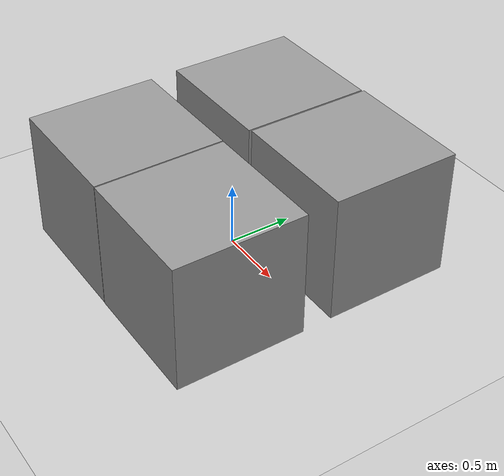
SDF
<sdf version="1.6">
 <world name="default">
  <light name="sun" type="directional">
   <pose>0 0 10 0 -0 0</pose>
   <diffuse>0.8 0.8 0.8 1</diffuse>
   <specular>0.1 0.1 0.1 1</specular>
   <attenuation>
    <range>1000</range>
    <constant>0.9</constant>
    <linear>0.01</linear>
    <quadratic>0.001</quadratic>
   </attenuation>
   <direction>-0.5 0.5 -1</direction>
  </light>
  <model name="ground_plane">
   <static>1</static>
   <link name="link">
    <collision name="collision">
     <geometry><plane><normal>0 0 1</normal><size>100 100</size></plane></geometry>
     <surface><friction><ode><mu>100</mu><mu2>50</mu2></ode></friction></surface>
    </collision>
    <visual name="visual">
     <cast_shadows>0</cast_shadows>
     <geometry><plane><normal>0 0 1</normal><size>100 100</size></plane></geometry>
     <material>
      <script><uri>file://media/materials/scripts/gazebo.material</uri><name>Gazebo/Grey</name></script>
     </material>
    </visual>
   </link>
  </model>
  <gravity>0 0 -9.8</gravity>
  <magnetic_field>6e-06 2.3e-05 -4.2e-05</magnetic_field>
  <atmosphere type="adiabatic"/>
  <physics name="default_physics" default="0" type="ode">
   <max_step_size>0.001</max_step_size>
   <real_time_factor>1</real_time_factor>
   <real_time_update_rate>1000</real_time_update_rate>
  </physics>
  <scene><ambient>0.4 0.4 0.4 1</ambient><background>0.7 0.7 0.7 1</background><shadows>1</shadows></scene>
  <spherical_coordinates>
   <surface_model>EARTH_WGS84</surface_model>
   <latitude_deg>0</latitude_deg>
   <longitude_deg>0</longitude_deg>
   <elevation>0</elevation>
   <heading_deg>0</heading_deg>
  </spherical_coordinates>
  <model name="unit_box_0">
   <pose>0.588579 0.605108 0.499995 0 1e-05 0</pose>
   <link name="link">
    <inertial>
     <mass>1</mass>
     <inertia>
      <ixx>0.166667</ixx>
      <ixy>0</ixy>
      <ixz>0</ixz>
      <iyy>0.166667</iyy>
      <iyz>0</iyz>
      <izz>0.166667</izz>
     </inertia>
    </inertial>
    <collision name="collision"><geometry><box><size>1 1 1</size></box></geometry></collision>
    <visual name="visual">
     <geometry><box><size>1 1 1</size></box></geometry>
     <material>
      <script><name>Gazebo/Grey</name><uri>file://media/materials/scripts/gazebo.material</uri></script>
     </material>
    </visual>
   </link>
  </model>
  <model name="unit_box_1">
   <pose>0.594212 -0.63256 0.499995 1e-05 -0 0</pose>
   <link name="link">
    <inertial>
     <mass>1</mass>
     <inertia>
      <ixx>0.166667</ixx>
      <ixy>0</ixy>
      <ixz>0</ixz>
      <iyy>0.166667</iyy>
      <iyz>0</iyz>
      <izz>0.166667</izz>
     </inertia>
    </inertial>
    <collision name="collision"><geometry><box><size>1 1 1</size></box></geometry></collision>
    <visual name="visual">
     <geometry><box><size>1 1 1</size></box></geometry>
     <material>
      <script><name>Gazebo/Grey</name><uri>file://media/materials/scripts/gazebo.material</uri></script>
     </material>
    </visual>
   </link>
  </model>
  <model name="unit_box_2">
   <pose>-0.416369 -0.62995 0.499995 0 1e-05 0</pose>
   <link name="link">
    <inertial>
     <mass>1</mass>
     <inertia>
      <ixx>0.166667</ixx>
      <ixy>0</ixy>
      <ixz>0</ixz>
      <iyy>0.166667</iyy>
      <iyz>0</iyz>
      <izz>0.166667</izz>
     </inertia>
    </inertial>
    <collision name="collision"><geometry><box><size>1 1 1</size></box></geometry></collision>
    <visual name="visual">
     <geometry><box><size>1 1 1</size></box></geometry>
     <material>
      <script><name>Gazebo/Grey</name><uri>file://media/materials/scripts/gazebo.material</uri></script>
     </material>
    </visual>
   </link>
  </model>
  <model name="unit_box_3">
   <pose>-0.425551 0.592693 0.499995 0 1e-05 0</pose>
   <link name="link">
    <inertial>
     <mass>1</mass>
     <inertia>
      <ixx>0.166667</ixx>
      <ixy>0</ixy>
      <ixz>0</ixz>
      <iyy>0.166667</iyy>
      <iyz>0</iyz>
      <izz>0.166667</izz>
     </inertia>
    </inertial>
    <collision name="collision"><geometry><box><size>1 1 1</size></box></geometry></collision>
    <visual name="visual">
     <geometry><box><size>1 1 1</size></box></geometry>
     <material>
      <script><name>Gazebo/Grey</name><uri>file://media/materials/scripts/gazebo.material</uri></script>
     </material>
    </visual>
   </link>
  </model>
  <model name="APtag">
   <pose>0.35214 -0.010726 0.01 1e-06 1e-06 0</pose>
   <link name="box">
    <collision name="collision"><geometry><box><size>0.2 0.2 0.02</size></box></geometry></collision>
    <visual name="visual">
     <geometry><box><size>0.2 0.2 0.01</size></box></geometry>
     <material>
      <script>
       <uri>model://APtag/materials/scripts</uri>
       <uri>model://APtag/materials/textures</uri>
       <name>APtag/tag0</name>
      </script>
     </material>
    </visual>
    <inertial>
     <inertia><ixx>1</ixx><ixy>0</ixy><ixz>0</ixz><iyy>1</iyy><iyz>0</iyz><izz>1</izz></inertia>
     <mass>1</mass>
    </inertial>
   </link>
  </model>
 </world>
</sdf>
